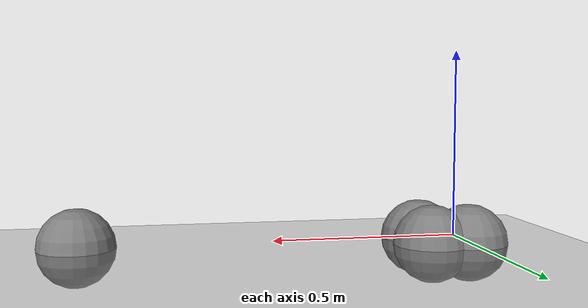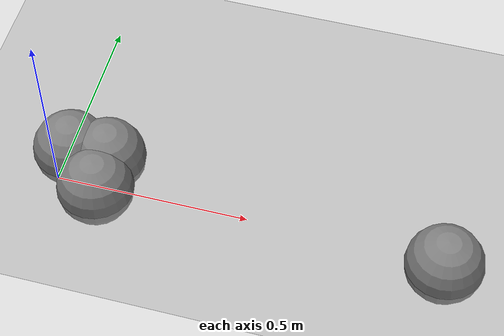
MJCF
<mujoco>
  <worldbody>
    <geom type="plane" size="10 10 .001"/>
    <body name="body">
      <geom type="sphere" size=".1" pos=".1 0 0" margin=".01"/>
      <geom type="sphere" size=".1" pos="0 .1 0" gap=".01"/>
      <geom type="sphere" size=".1" pos=".1 .1 0" gap=".01"/>
      <joint type="slide" axis="0 0 1"/>
      <joint type="hinge" axis="1 0 1"/>
    </body>
    <!-- unactuated -->
    <body pos="1 0 0">
      <joint name="unactuated" type="hinge" axis="1 0 0"/>
      <geom type="sphere" size=".1"/>
    </body>
  </worldbody>
  <actuator>
    <adhesion body="body" gain=".123" ctrlrange="0 1"/>
  </actuator>
  <keyframe>
    <key qpos=".11 0 1"/>
    <key qpos=".12 0 1"/>
    <key qpos=".09 0 1"/>
    <key qpos=".08 0 1"/>
  </keyframe>
</mujoco>
